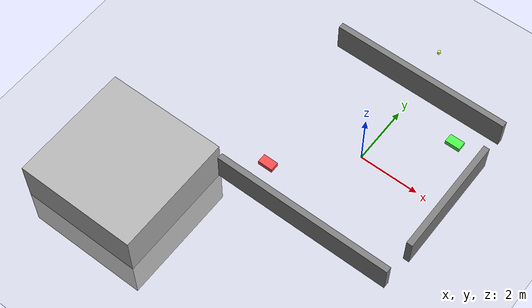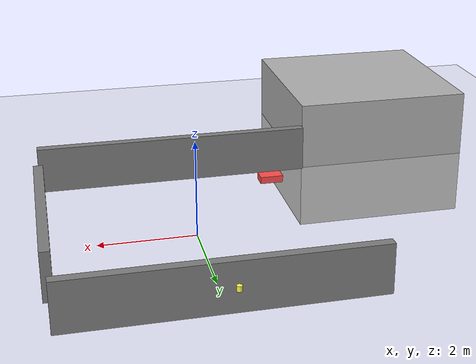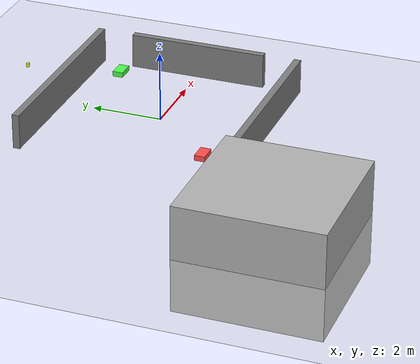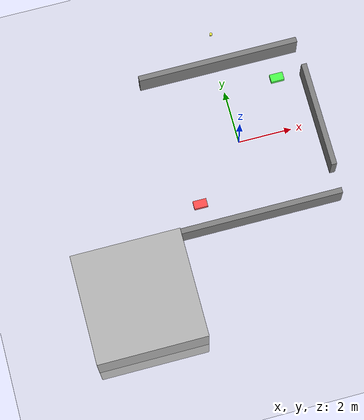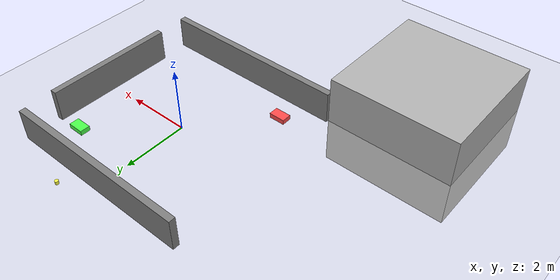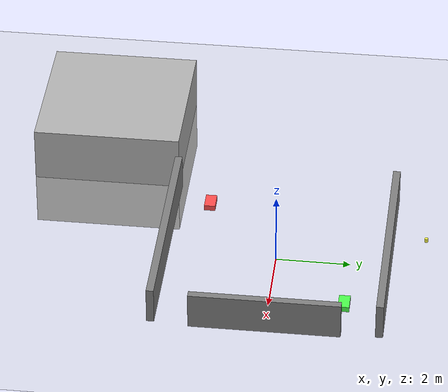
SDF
<?xml version="1.0" ?>
<sdf version="1.7">
  <world name="complex_world">
    <!-- Include the default Gazebo world configuration -->
    <include>
      <uri>model://ground_plane</uri>
    </include>

    <include>
      <uri>model://sun</uri>
    </include>

    <!-- Add a textured outdoor environment -->
    <model name="building_1">
      <pose>-5 -5 0 0 0 0</pose>
      <static>true</static>
      <link name="link">
        <collision name="collision">
          <geometry>
            <box>
              <size>4 4 3</size>
            </box>
          </geometry>
        </collision>
        <visual name="visual">
          <geometry>
            <box>
              <size>4 4 3</size>
            </box>
          </geometry>
          <material>
            <ambient>0.6 0.6 0.6 1</ambient>
            <diffuse>0.7 0.7 0.7 1</diffuse>
            <specular>0.1 0.1 0.1 1</specular>
          </material>
        </visual>
      </link>
    </model>

    <!-- Add a maze-like structure -->
    <model name="maze_wall_1">
      <pose>0 -3 0.5 0 0 0</pose>
      <static>true</static>
      <link name="link">
        <collision name="collision">
          <geometry>
            <box>
              <size>6 0.2 1</size>
            </box>
          </geometry>
        </collision>
        <visual name="visual">
          <geometry>
            <box>
              <size>6 0.2 1</size>
            </box>
          </geometry>
          <material>
            <ambient>0.4 0.4 0.4 1</ambient>
            <diffuse>0.5 0.5 0.5 1</diffuse>
            <specular>0.1 0.1 0.1 1</specular>
          </material>
        </visual>
      </link>
    </model>

    <model name="maze_wall_2">
      <pose>3 0 0.5 0 0 1.5707</pose>
      <static>true</static>
      <link name="link">
        <collision name="collision">
          <geometry>
            <box>
              <size>4 0.2 1</size>
            </box>
          </geometry>
        </collision>
        <visual name="visual">
          <geometry>
            <box>
              <size>4 0.2 1</size>
            </box>
          </geometry>
          <material>
            <ambient>0.4 0.4 0.4 1</ambient>
            <diffuse>0.5 0.5 0.5 1</diffuse>
            <specular>0.1 0.1 0.1 1</specular>
          </material>
        </visual>
      </link>
    </model>

    <model name="maze_wall_3">
      <pose>0 3 0.5 0 0 0</pose>
      <static>true</static>
      <link name="link">
        <collision name="collision">
          <geometry>
            <box>
              <size>6 0.2 1</size>
            </box>
          </geometry>
        </collision>
        <visual name="visual">
          <geometry>
            <box>
              <size>6 0.2 1</size>
            </box>
          </geometry>
          <material>
            <ambient>0.4 0.4 0.4 1</ambient>
            <diffuse>0.5 0.5 0.5 1</diffuse>
            <specular>0.1 0.1 0.1 1</specular>
          </material>
        </visual>
      </link>
    </model>

    <!-- Add multiple robots -->
    <model name="robot_1">
      <pose>-2 -2 0.25 0 0 0</pose>
      <link name="chassis">
        <collision name="collision">
          <geometry>
            <box>
              <size>0.5 0.3 0.15</size>
            </box>
          </geometry>
        </collision>
        <visual name="visual">
          <geometry>
            <box>
              <size>0.5 0.3 0.15</size>
            </box>
          </geometry>
          <material>
            <ambient>0.8 0.1 0.1 1</ambient>
            <diffuse>1.0 0.3 0.3 1</diffuse>
            <specular>0.2 0.2 0.2 1</specular>
          </material>
        </visual>
        <inertial>
          <mass>1.0</mass>
          <inertia>
            <ixx>0.01</ixx>
            <ixy>0</ixy>
            <ixz>0</ixz>
            <iyy>0.01</iyy>
            <iyz>0</iyz>
            <izz>0.01</izz>
          </inertia>
        </inertial>
      </link>

      <!-- Wheels for robot 1 -->
      <joint name="left_wheel_joint_1" type="continuous">
        <parent>chassis</parent>
        <child>left_wheel_1</child>
        <axis>
          <xyz>0 1 0</xyz>
        </axis>
      </joint>

      <link name="left_wheel_1">
        <collision name="collision">
          <geometry>
            <cylinder>
              <radius>0.1</radius>
              <length>0.05</length>
            </cylinder>
          </geometry>
        </collision>
        <visual name="visual">
          <geometry>
            <cylinder>
              <radius>0.1</radius>
              <length>0.05</length>
            </cylinder>
          </geometry>
          <material>
            <ambient>0.2 0.2 0.2 1</ambient>
            <diffuse>0.4 0.4 0.4 1</diffuse>
            <specular>0.1 0.1 0.1 1</specular>
          </material>
        </visual>
        <inertial>
          <mass>0.2</mass>
          <inertia>
            <ixx>0.001</ixx>
            <ixy>0</ixy>
            <ixz>0</ixz>
            <iyy>0.001</iyy>
            <iyz>0</iyz>
            <izz>0.001</izz>
          </inertia>
        </inertial>
      </link>

      <joint name="right_wheel_joint_1" type="continuous">
        <parent>chassis</parent>
        <child>right_wheel_1</child>
        <axis>
          <xyz>0 1 0</xyz>
        </axis>
      </joint>

      <link name="right_wheel_1">
        <collision name="collision">
          <geometry>
            <cylinder>
              <radius>0.1</radius>
              <length>0.05</length>
            </cylinder>
          </geometry>
        </collision>
        <visual name="visual">
          <geometry>
            <cylinder>
              <radius>0.1</radius>
              <length>0.05</length>
            </cylinder>
          </geometry>
          <material>
            <ambient>0.2 0.2 0.2 1</ambient>
            <diffuse>0.4 0.4 0.4 1</diffuse>
            <specular>0.1 0.1 0.1 1</specular>
          </material>
        </visual>
        <inertial>
          <mass>0.2</mass>
          <inertia>
            <ixx>0.001</ixx>
            <ixy>0</ixy>
            <ixz>0</ixz>
            <iyy>0.001</iyy>
            <iyz>0</iyz>
            <izz>0.001</izz>
          </inertia>
        </inertial>
      </link>

      <joint name="left_wheel_connection_1" type="fixed">
        <parent>chassis</parent>
        <child>left_wheel_1</child>
        <pose>-0.15 0.2 0 0 0 0</pose>
      </joint>

      <joint name="right_wheel_connection_1" type="fixed">
        <parent>chassis</parent>
        <child>right_wheel_1</child>
        <pose>-0.15 -0.2 0 0 0 0</pose>
      </joint>
    </model>

    <model name="robot_2">
      <pose>2 2 0.25 0 0 3.14159</pose>
      <link name="chassis">
        <collision name="collision">
          <geometry>
            <box>
              <size>0.5 0.3 0.15</size>
            </box>
          </geometry>
        </collision>
        <visual name="visual">
          <geometry>
            <box>
              <size>0.5 0.3 0.15</size>
            </box>
          </geometry>
          <material>
            <ambient>0.1 0.8 0.1 1</ambient>
            <diffuse>0.3 1.0 0.3 1</diffuse>
            <specular>0.2 0.2 0.2 1</specular>
          </material>
        </visual>
        <inertial>
          <mass>1.0</mass>
          <inertia>
            <ixx>0.01</ixx>
            <ixy>0</ixy>
            <ixz>0</ixz>
            <iyy>0.01</iyy>
            <iyz>0</iyz>
            <izz>0.01</izz>
          </inertia>
        </inertial>
      </link>

      <!-- Wheels for robot 2 -->
      <joint name="left_wheel_joint_2" type="continuous">
        <parent>chassis</parent>
        <child>left_wheel_2</child>
        <axis>
          <xyz>0 1 0</xyz>
        </axis>
      </joint>

      <link name="left_wheel_2">
        <collision name="collision">
          <geometry>
            <cylinder>
              <radius>0.1</radius>
              <length>0.05</length>
            </cylinder>
          </geometry>
        </collision>
        <visual name="visual">
          <geometry>
            <cylinder>
              <radius>0.1</radius>
              <length>0.05</length>
            </cylinder>
          </geometry>
          <material>
            <ambient>0.2 0.2 0.2 1</ambient>
            <diffuse>0.4 0.4 0.4 1</diffuse>
            <specular>0.1 0.1 0.1 1</specular>
          </material>
        </visual>
        <inertial>
          <mass>0.2</mass>
          <inertia>
            <ixx>0.001</ixx>
            <ixy>0</ixy>
            <ixz>0</ixz>
            <iyy>0.001</iyy>
            <iyz>0</iyz>
            <izz>0.001</izz>
          </inertia>
        </inertial>
      </link>

      <joint name="right_wheel_joint_2" type="continuous">
        <parent>chassis</parent>
        <child>right_wheel_2</child>
        <axis>
          <xyz>0 1 0</xyz>
        </axis>
      </joint>

      <link name="right_wheel_2">
        <collision name="collision">
          <geometry>
            <cylinder>
              <radius>0.1</radius>
              <length>0.05</length>
            </cylinder>
          </geometry>
        </collision>
        <visual name="visual">
          <geometry>
            <cylinder>
              <radius>0.1</radius>
              <length>0.05</length>
            </cylinder>
          </geometry>
          <material>
            <ambient>0.2 0.2 0.2 1</ambient>
            <diffuse>0.4 0.4 0.4 1</diffuse>
            <specular>0.1 0.1 0.1 1</specular>
          </material>
        </visual>
        <inertial>
          <mass>0.2</mass>
          <inertia>
            <ixx>0.001</ixx>
            <ixy>0</ixy>
            <ixz>0</ixz>
            <iyy>0.001</iyy>
            <iyz>0</iyz>
            <izz>0.001</izz>
          </inertia>
        </inertial>
      </link>

      <joint name="left_wheel_connection_2" type="fixed">
        <parent>chassis</parent>
        <child>left_wheel_2</child>
        <pose>-0.15 0.2 0 0 0 0</pose>
      </joint>

      <joint name="right_wheel_connection_2" type="fixed">
        <parent>chassis</parent>
        <child>right_wheel_2</child>
        <pose>-0.15 -0.2 0 0 0 0</pose>
      </joint>
    </model>

    <!-- Add a simple sensor model -->
    <model name="lidar_sensor">
      <pose>0 4 1 0 0 0</pose>
      <link name="sensor_link">
        <collision name="collision">
          <geometry>
            <cylinder>
              <radius>0.05</radius>
              <length>0.1</length>
            </cylinder>
          </geometry>
        </collision>
        <visual name="visual">
          <geometry>
            <cylinder>
              <radius>0.05</radius>
              <length>0.1</length>
            </cylinder>
          </geometry>
          <material>
            <ambient>0.8 0.8 0.1 1</ambient>
            <diffuse>1.0 1.0 0.3 1</diffuse>
            <specular>0.2 0.2 0.2 1</specular>
          </material>
        </visual>
        <sensor name="lidar" type="ray">
          <ray>
            <scan>
              <horizontal>
                <samples>360</samples>
                <resolution>1</resolution>
                <min_angle>-3.14159</min_angle>
                <max_angle>3.14159</max_angle>
              </horizontal>
            </scan>
            <range>
              <min>0.1</min>
              <max>10.0</max>
              <resolution>0.01</resolution>
            </range>
          </ray>
          <always_on>1</always_on>
          <update_rate>10</update_rate>
          <visualize>true</visualize>
        </sensor>
      </link>
    </model>

    <!-- Physics engine configuration -->
    <physics name="default_physics" type="ode">
      <max_step_size>0.001</max_step_size>
      <real_time_factor>1</real_time_factor>
      <real_time_update_rate>1000</real_time_update_rate>
      <gravity>0 0 -9.8</gravity>
      <ode>
        <solver>
          <type>quick</type>
          <iters>10</iters>
          <sor>1.3</sor>
        </solver>
        <constraints>
          <cfm>0.000001</cfm>
          <erp>0.2</erp>
          <contact_max_correcting_vel>100</contact_max_correcting_vel>
          <contact_surface_layer>0.001</contact_surface_layer>
        </constraints>
      </ode>
    </physics>

    <!-- Add a plugin for environmental effects -->
    <plugin name="wind_plugin" filename="libWindPlugin.so">
      <wind_direction>1 0 0</wind_direction>
      <wind_force>0.5</wind_force>
      <wind_variance>0.1</wind_variance>
    </plugin>
  </world>
</sdf>
